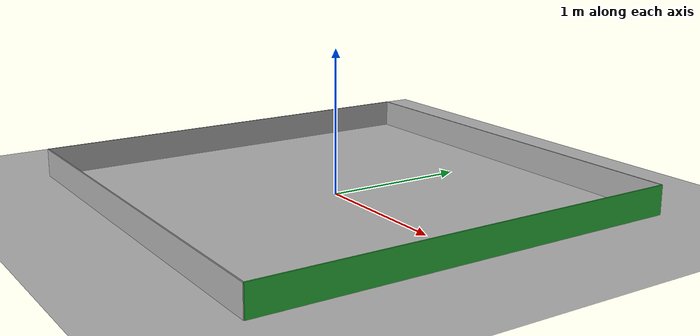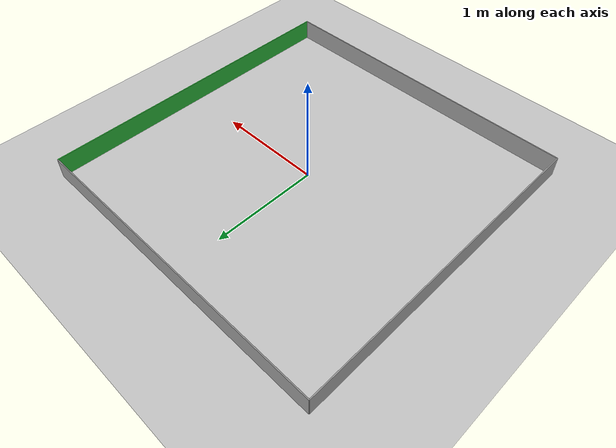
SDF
<sdf version="1.6">
 <world name="default">
  <scene><ambient>0.5 0.5 0.5 1</ambient><shadows>0</shadows><background>0.7 0.7 0.7 1</background></scene>
  <model name="ground_plane">
   <static>1</static>
   <link name="link">
    <collision name="collision">
     <geometry><plane><normal>0 0 1</normal><size>4 4</size></plane></geometry>
     <surface><friction><ode><mu>100</mu><mu2>50</mu2></ode></friction></surface>
    </collision>
    <visual name="visual">
     <cast_shadows>0</cast_shadows>
     <geometry><plane><normal>0 0 1</normal><size>4 4</size></plane></geometry>
     <material>
      <script>
       <uri>model://penguinpi_gazebo/worlds/materials/scripts</uri>
       <uri>model://penguinpi_gazebo/worlds/materials/textures</uri>
       <name>GroundPlane/Image</name>
      </script>
     </material>
    </visual>
   </link>
  </model>
  <light name="sun" type="directional">
   <pose>0 0 10 0 -0 0</pose>
   <diffuse>0.8 0.8 0.8 1</diffuse>
   <specular>0.1 0.1 0.1 1</specular>
   <attenuation>
    <range>1000</range>
    <constant>0.9</constant>
    <linear>0.01</linear>
    <quadratic>0.001</quadratic>
   </attenuation>
   <direction>-0.5 0.5 -1</direction>
  </light>
  <light name="user_directional_light_0" type="directional">
   <pose>2.9789 -0.124544 1 0 -0 0</pose>
   <diffuse>0.5 0.5 0.5 1</diffuse>
   <specular>0.1 0.1 0.1 1</specular>
   <direction>0.1 0.1 -0.9</direction>
   <attenuation>
    <range>20</range>
    <constant>0.5</constant>
    <linear>0.01</linear>
    <quadratic>0.001</quadratic>
   </attenuation>
  </light>
  <light name="user_directional_light_1" type="directional">
   <pose>-0.333254 1.99159 1 0 -0 0</pose>
   <diffuse>0.5 0.5 0.5 1</diffuse>
   <specular>0.1 0.1 0.1 1</specular>
   <direction>0.1 0.1 -0.9</direction>
   <attenuation>
    <range>20</range>
    <constant>0.5</constant>
    <linear>0.01</linear>
    <quadratic>0.001</quadratic>
   </attenuation>
  </light>
  <light name="user_directional_light_2" type="directional">
   <pose>-2.4524 -0.083461 1 0 -0 0</pose>
   <diffuse>0.5 0.5 0.5 1</diffuse>
   <specular>0.1 0.1 0.1 1</specular>
   <direction>0.1 0.1 -0.9</direction>
   <attenuation>
    <range>20</range>
    <constant>0.5</constant>
    <linear>0.01</linear>
    <quadratic>0.001</quadratic>
   </attenuation>
  </light>
  <light name="user_directional_light_3" type="directional">
   <pose>-0.069837 -2.09095 1 0 -0 0</pose>
   <diffuse>0.5 0.5 0.5 1</diffuse>
   <specular>0.1 0.1 0.1 1</specular>
   <direction>0.1 0.1 -0.9</direction>
   <attenuation>
    <range>20</range>
    <constant>0.5</constant>
    <linear>0.01</linear>
    <quadratic>0.001</quadratic>
   </attenuation>
  </light>
  <physics name="default_physics" default="0" type="ode">
   <max_step_size>0.005</max_step_size>
   <real_time_factor>1</real_time_factor>
   <real_time_update_rate>100</real_time_update_rate>
  </physics>
  <gravity>0 0 -9.8</gravity>
  <magnetic_field>6e-06 2.3e-05 -4.2e-05</magnetic_field>
  <atmosphere type="adiabatic"/>
  <audio><device>default</device></audio>
  <spherical_coordinates>
   <surface_model>EARTH_WGS84</surface_model>
   <latitude_deg>0</latitude_deg>
   <longitude_deg>0</longitude_deg>
   <elevation>0</elevation>
   <heading_deg>0</heading_deg>
  </spherical_coordinates>
  <model name="wall">
   <static>1</static>
   <link name="link">
    <inertial>
     <mass>1</mass>
     <inertia>
      <ixx>0.166667</ixx>
      <ixy>0</ixy>
      <ixz>0</ixz>
      <iyy>0.166667</iyy>
      <iyz>0</iyz>
      <izz>0.166667</izz>
     </inertia>
    </inertial>
    <pose>0 0 -0.4 0 -0 0</pose>
    <visual name="visual">
     <geometry><box><size>0.01 3 0.2</size></box></geometry>
     <material>
      <script><name>Gazebo/Green</name><uri>file://media/materials/scripts/gazebo.material</uri></script>
      <shader type="vertex"><normal_map>__default__</normal_map></shader>
      <ambient>0.3 0.3 0.3 1</ambient>
      <diffuse>0.7 0.7 0.7 1</diffuse>
      <specular>0.01 0.01 0.01 1</specular>
      <emissive>0 0 0 1</emissive>
     </material>
    </visual>
    <collision name="collision">
     <geometry><box><size>0.01 3 0.2</size></box></geometry>
     <surface>
      <friction>
       <ode><mu>1</mu><mu2>1</mu2><fdir1>0 0 0</fdir1><slip1>0</slip1><slip2>0</slip2></ode>
       <torsional>
        <coefficient>1</coefficient>
        <patch_radius>0</patch_radius>
        <surface_radius>0</surface_radius>
        <use_patch_radius>1</use_patch_radius>
        <ode><slip>0</slip></ode>
       </torsional>
      </friction>
      <bounce><restitution_coefficient>0</restitution_coefficient><threshold>1e+06</threshold></bounce>
      <contact>
       <collide_without_contact>0</collide_without_contact>
       <collide_without_contact_bitmask>1</collide_without_contact_bitmask>
       <collide_bitmask>1</collide_bitmask>
       <ode>
        <soft_cfm>0</soft_cfm>
        <soft_erp>0.2</soft_erp>
        <kp>1e+13</kp>
        <kd>1</kd>
        <max_vel>0.01</max_vel>
        <min_depth>0</min_depth>
       </ode>
       <bullet>
        <split_impulse>1</split_impulse>
        <split_impulse_penetration_threshold>-0.01</split_impulse_penetration_threshold>
        <soft_cfm>0</soft_cfm>
        <soft_erp>0.2</soft_erp>
        <kp>1e+13</kp>
        <kd>1</kd>
       </bullet>
      </contact>
     </surface>
    </collision>
   </link>
   <static>0</static>
   <pose>1.5 0 0.5 0 -0 0</pose>
  </model>
  <model name="wall_0">
   <static>1</static>
   <link name="link">
    <inertial>
     <mass>1</mass>
     <inertia>
      <ixx>0.166667</ixx>
      <ixy>0</ixy>
      <ixz>0</ixz>
      <iyy>0.166667</iyy>
      <iyz>0</iyz>
      <izz>0.166667</izz>
     </inertia>
    </inertial>
    <pose>0 -0 -0.4 0 -0 0</pose>
    <visual name="visual">
     <geometry><box><size>0.01 3 0.2</size></box></geometry>
     <material>
      <script><name>Gazebo/Grey</name><uri>file://media/materials/scripts/gazebo.material</uri></script>
      <shader type="vertex"><normal_map>__default__</normal_map></shader>
      <ambient>0.3 0.3 0.3 1</ambient>
      <diffuse>0.7 0.7 0.7 1</diffuse>
      <specular>0.01 0.01 0.01 1</specular>
      <emissive>0 0 0 1</emissive>
     </material>
    </visual>
    <collision name="collision">
     <geometry><box><size>0.01 3 0.2</size></box></geometry>
     <surface>
      <friction>
       <ode><mu>1</mu><mu2>1</mu2><fdir1>0 0 0</fdir1><slip1>0</slip1><slip2>0</slip2></ode>
       <torsional>
        <coefficient>1</coefficient>
        <patch_radius>0</patch_radius>
        <surface_radius>0</surface_radius>
        <use_patch_radius>1</use_patch_radius>
        <ode><slip>0</slip></ode>
       </torsional>
      </friction>
      <bounce><restitution_coefficient>0</restitution_coefficient><threshold>1e+06</threshold></bounce>
      <contact>
       <collide_without_contact>0</collide_without_contact>
       <collide_without_contact_bitmask>1</collide_without_contact_bitmask>
       <collide_bitmask>1</collide_bitmask>
       <ode>
        <soft_cfm>0</soft_cfm>
        <soft_erp>0.2</soft_erp>
        <kp>1e+13</kp>
        <kd>1</kd>
        <max_vel>0.01</max_vel>
        <min_depth>0</min_depth>
       </ode>
       <bullet>
        <split_impulse>1</split_impulse>
        <split_impulse_penetration_threshold>-0.01</split_impulse_penetration_threshold>
        <soft_cfm>0</soft_cfm>
        <soft_erp>0.2</soft_erp>
        <kp>1e+13</kp>
        <kd>1</kd>
       </bullet>
      </contact>
     </surface>
    </collision>
   </link>
   <static>0</static>
   <pose>-1.5 0 0.5 0 -0 0</pose>
  </model>
  <model name="wall_1">
   <static>1</static>
   <link name="link">
    <inertial>
     <mass>1</mass>
     <inertia>
      <ixx>0.166667</ixx>
      <ixy>0</ixy>
      <ixz>0</ixz>
      <iyy>0.166667</iyy>
      <iyz>0</iyz>
      <izz>0.166667</izz>
     </inertia>
    </inertial>
    <pose>0 -0 -0.4 0 -0 0</pose>
    <visual name="visual">
     <geometry><box><size>0.01 3 0.2</size></box></geometry>
     <material>
      <script><name>Gazebo/Grey</name><uri>file://media/materials/scripts/gazebo.material</uri></script>
      <shader type="vertex"><normal_map>__default__</normal_map></shader>
      <ambient>0.3 0.3 0.3 1</ambient>
      <diffuse>0.7 0.7 0.7 1</diffuse>
      <specular>0.01 0.01 0.01 1</specular>
      <emissive>0 0 0 1</emissive>
     </material>
    </visual>
    <collision name="collision">
     <geometry><box><size>0.01 3 0.2</size></box></geometry>
     <surface>
      <friction>
       <ode><mu>1</mu><mu2>1</mu2><fdir1>0 0 0</fdir1><slip1>0</slip1><slip2>0</slip2></ode>
       <torsional>
        <coefficient>1</coefficient>
        <patch_radius>0</patch_radius>
        <surface_radius>0</surface_radius>
        <use_patch_radius>1</use_patch_radius>
        <ode><slip>0</slip></ode>
       </torsional>
      </friction>
      <bounce><restitution_coefficient>0</restitution_coefficient><threshold>1e+06</threshold></bounce>
      <contact>
       <collide_without_contact>0</collide_without_contact>
       <collide_without_contact_bitmask>1</collide_without_contact_bitmask>
       <collide_bitmask>1</collide_bitmask>
       <ode>
        <soft_cfm>0</soft_cfm>
        <soft_erp>0.2</soft_erp>
        <kp>1e+13</kp>
        <kd>1</kd>
        <max_vel>0.01</max_vel>
        <min_depth>0</min_depth>
       </ode>
       <bullet>
        <split_impulse>1</split_impulse>
        <split_impulse_penetration_threshold>-0.01</split_impulse_penetration_threshold>
        <soft_cfm>0</soft_cfm>
        <soft_erp>0.2</soft_erp>
        <kp>1e+13</kp>
        <kd>1</kd>
       </bullet>
      </contact>
     </surface>
    </collision>
   </link>
   <static>0</static>
   <pose>0 1.5 0.5 0 -0 1.5708</pose>
  </model>
  <model name="wall_2">
   <static>1</static>
   <link name="link">
    <inertial>
     <mass>1</mass>
     <inertia>
      <ixx>0.166667</ixx>
      <ixy>0</ixy>
      <ixz>0</ixz>
      <iyy>0.166667</iyy>
      <iyz>0</iyz>
      <izz>0.166667</izz>
     </inertia>
    </inertial>
    <pose>0 -0 -0.4 0 -0 0</pose>
    <visual name="visual">
     <geometry><box><size>0.01 3 0.2</size></box></geometry>
     <material>
      <script><name>Gazebo/Grey</name><uri>file://media/materials/scripts/gazebo.material</uri></script>
      <shader type="vertex"><normal_map>__default__</normal_map></shader>
      <ambient>0.3 0.3 0.3 1</ambient>
      <diffuse>0.7 0.7 0.7 1</diffuse>
      <specular>0.01 0.01 0.01 1</specular>
      <emissive>0 0 0 1</emissive>
     </material>
    </visual>
    <collision name="collision">
     <geometry><box><size>0.01 3 0.2</size></box></geometry>
     <surface>
      <friction>
       <ode><mu>1</mu><mu2>1</mu2><fdir1>0 0 0</fdir1><slip1>0</slip1><slip2>0</slip2></ode>
       <torsional>
        <coefficient>1</coefficient>
        <patch_radius>0</patch_radius>
        <surface_radius>0</surface_radius>
        <use_patch_radius>1</use_patch_radius>
        <ode><slip>0</slip></ode>
       </torsional>
      </friction>
      <bounce><restitution_coefficient>0</restitution_coefficient><threshold>1e+06</threshold></bounce>
      <contact>
       <collide_without_contact>0</collide_without_contact>
       <collide_without_contact_bitmask>1</collide_without_contact_bitmask>
       <collide_bitmask>1</collide_bitmask>
       <ode>
        <soft_cfm>0</soft_cfm>
        <soft_erp>0.2</soft_erp>
        <kp>1e+13</kp>
        <kd>1</kd>
        <max_vel>0.01</max_vel>
        <min_depth>0</min_depth>
       </ode>
       <bullet>
        <split_impulse>1</split_impulse>
        <split_impulse_penetration_threshold>-0.01</split_impulse_penetration_threshold>
        <soft_cfm>0</soft_cfm>
        <soft_erp>0.2</soft_erp>
        <kp>1e+13</kp>
        <kd>1</kd>
       </bullet>
      </contact>
     </surface>
    </collision>
   </link>
   <static>0</static>
   <pose>0 -1.5 0.5 0 -0 1.5708</pose>
  </model>
 </world>
</sdf>
